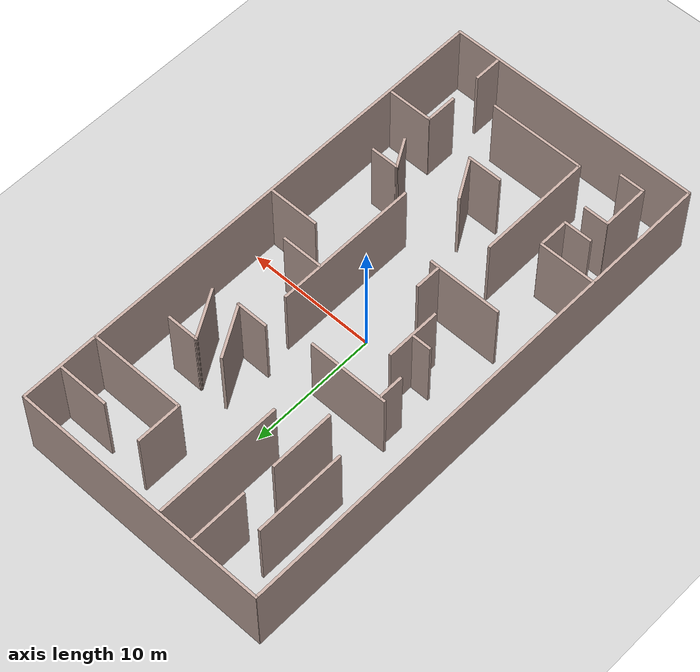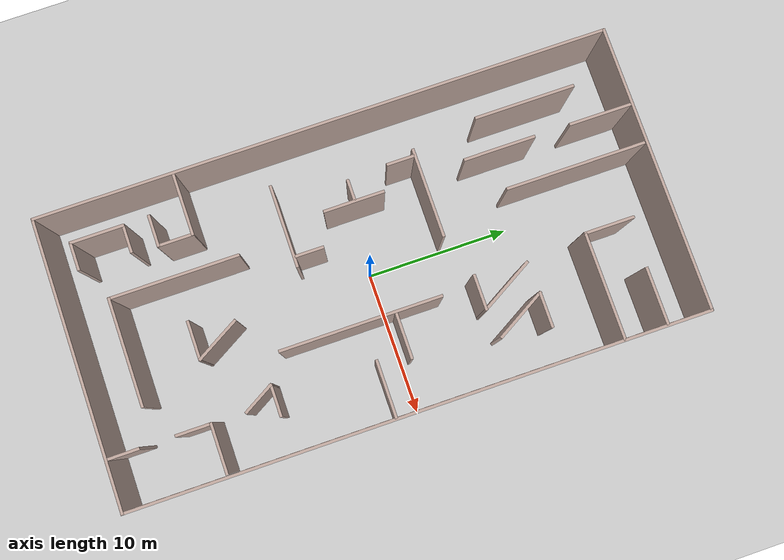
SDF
<sdf version="1.7">
 <world name="default">
  <plugin name="ros_interface_plugin" filename="librotors_gazebo_ros_interface_plugin.so"/>
  <light name="sun" type="directional">
   <pose>0 0 10 0 -0 0</pose>
   <diffuse>0.8 0.8 0.8 1</diffuse>
   <specular>0.2 0.2 0.2 1</specular>
   <attenuation>
    <range>1000</range>
    <constant>0.9</constant>
    <linear>0.01</linear>
    <quadratic>0.001</quadratic>
   </attenuation>
   <direction>-0.5 0.1 -0.9</direction>
   <spot><inner_angle>0</inner_angle><outer_angle>0</outer_angle><falloff>0</falloff></spot>
  </light>
  <model name="ground_plane">
   <static>1</static>
   <link name="link">
    <collision name="collision">
     <geometry><plane><normal>0 0 1</normal><size>100 100</size></plane></geometry>
     <surface><friction><ode><mu>100</mu><mu2>50</mu2></ode></friction></surface>
    </collision>
    <visual name="visual">
     <cast_shadows>0</cast_shadows>
     <geometry><plane><normal>0 0 1</normal><size>100 100</size></plane></geometry>
     <material>
      <script><uri>file://media/materials/scripts/gazebo.material</uri><name>Gazebo/Grey</name></script>
     </material>
    </visual>
   </link>
  </model>
  <gravity>0 0 -9.8</gravity>
  <magnetic_field>6e-06 2.3e-05 -4.2e-05</magnetic_field>
  <atmosphere type="adiabatic"/>
  <physics type="ode">
   <max_step_size>0.005</max_step_size>
   <real_time_factor>1</real_time_factor>
   <real_time_update_rate>200</real_time_update_rate>
  </physics>
  <scene><ambient>0.4 0.4 0.4 1</ambient><background>0.7 0.7 0.7 1</background><shadows>1</shadows></scene>
  <spherical_coordinates>
   <surface_model>EARTH_WGS84</surface_model>
   <latitude_deg>0</latitude_deg>
   <longitude_deg>0</longitude_deg>
   <elevation>0</elevation>
   <heading_deg>0</heading_deg>
  </spherical_coordinates>
  <model name="Untitled">
   <pose>-0.002612 0 0 0 -0 0</pose>
   <link name="Wall_0">
    <collision name="Wall_0_Collision">
     <geometry><box><size>20.15 0.2 6.0</size></box></geometry>
     <pose>0 0 3.0 0 -0 0</pose>
    </collision>
    <visual name="Wall_0_Visual">
     <pose>0 0 3.0 0 -0 0</pose>
     <geometry><box><size>20.15 0.2 6.0</size></box></geometry>
     <material>
      <script><uri>file://media/materials/scripts/gazebo.material</uri><name>Gazebo/Grey</name></script>
      <ambient>0.760784 0.662745 0.627451 1</ambient>
     </material>
     <meta><layer>0</layer></meta>
    </visual>
    <pose>0.002612 20 0 0 -0 0</pose>
   </link>
   <link name="Wall_11">
    <collision name="Wall_11_Collision">
     <geometry><box><size>2.25 0.2 6.0</size></box></geometry>
     <pose>0 0 3.0 0 -0 0</pose>
    </collision>
    <visual name="Wall_11_Visual">
     <pose>0 0 3.0 0 -0 0</pose>
     <geometry><box><size>2.25 0.2 6.0</size></box></geometry>
     <material>
      <script><uri>file://media/materials/scripts/gazebo.material</uri><name>Gazebo/Grey</name></script>
      <ambient>0.760784 0.662745 0.627451 1</ambient>
     </material>
     <meta><layer>0</layer></meta>
    </visual>
    <pose>6.45204 -18.8685 0 0 -0 1.5708</pose>
   </link>
   <link name="Wall_13">
    <collision name="Wall_13_Collision">
     <geometry><box><size>7.5 0.2 6.0</size></box></geometry>
     <pose>0 0 3.0 0 -0 0</pose>
    </collision>
    <visual name="Wall_13_Visual">
     <pose>0 0 3.0 0 -0 0</pose>
     <geometry><box><size>7.5 0.2 6.0</size></box></geometry>
     <material>
      <script><uri>file://media/materials/scripts/gazebo.material</uri><name>Gazebo/Grey</name></script>
      <ambient>0.760784 0.662745 0.627451 1</ambient>
     </material>
     <meta><layer>0</layer></meta>
    </visual>
    <pose>0.306648 -16.7926 0 0 -0 3.14159</pose>
   </link>
   <link name="Wall_14">
    <collision name="Wall_14_Collision">
     <geometry><box><size>9 0.2 6.0</size></box></geometry>
     <pose>0 0 3.0 0 -0 0</pose>
    </collision>
    <visual name="Wall_14_Visual">
     <pose>0 0 3.0 0 -0 0</pose>
     <geometry><box><size>9 0.2 6.0</size></box></geometry>
     <material>
      <script><uri>file://media/materials/scripts/gazebo.material</uri><name>Gazebo/Grey</name></script>
      <ambient>0.760784 0.662745 0.627451 1</ambient>
     </material>
     <meta><layer>0</layer></meta>
    </visual>
    <pose>-3.36835 -12.3676 0 0 -0 1.5708</pose>
   </link>
   <link name="Wall_17">
    <collision name="Wall_17_Collision">
     <geometry><box><size>5.75 0.2 6.0</size></box></geometry>
     <pose>0 0 3.0 0 -0 0</pose>
    </collision>
    <visual name="Wall_17_Visual">
     <pose>0 0 3.0 0 -0 0</pose>
     <geometry><box><size>5.75 0.2 6.0</size></box></geometry>
     <material>
      <script><uri>file://media/materials/scripts/gazebo.material</uri><name>Gazebo/Grey</name></script>
      <ambient>0.760784 0.662745 0.627451 1</ambient>
     </material>
     <meta><layer>0</layer></meta>
    </visual>
    <pose>-4.23251 -4.54093 0 0 -0 0</pose>
   </link>
   <link name="Wall_19">
    <collision name="Wall_19_Collision">
     <geometry><box><size>4.25 0.2 6.0</size></box></geometry>
     <pose>0 0 3.0 0 -0 0</pose>
    </collision>
    <visual name="Wall_19_Visual">
     <pose>0 0 3.0 0 -0 0</pose>
     <geometry><box><size>4.25 0.2 6.0</size></box></geometry>
     <material>
      <script><uri>file://media/materials/scripts/gazebo.material</uri><name>Gazebo/Grey</name></script>
      <ambient>0.760784 0.662745 0.627451 1</ambient>
     </material>
     <meta><layer>0</layer></meta>
    </visual>
    <pose>-4.30991 0.339328 0 0 -0 -1.5708</pose>
   </link>
   <link name="Wall_2">
    <collision name="Wall_2_Collision">
     <geometry><box><size>40.15 0.2 6.0</size></box></geometry>
     <pose>0 0 3.0 0 -0 0</pose>
    </collision>
    <visual name="Wall_2_Visual">
     <pose>0 0 3.0 0 -0 0</pose>
     <geometry><box><size>40.15 0.2 6.0</size></box></geometry>
     <material>
      <script><uri>file://media/materials/scripts/gazebo.material</uri><name>Gazebo/Grey</name></script>
      <ambient>0.760784 0.662745 0.627451 1</ambient>
     </material>
     <meta><layer>0</layer></meta>
    </visual>
    <pose>10.0026 0 0 0 -0 1.5708</pose>
   </link>
   <link name="Wall_21">
    <collision name="Wall_21_Collision">
     <geometry><box><size>1.5 0.2 6.0</size></box></geometry>
     <pose>0 0 3.0 0 -0 0</pose>
    </collision>
    <visual name="Wall_21_Visual">
     <pose>0 0 3.0 0 -0 0</pose>
     <geometry><box><size>1.5 0.2 6.0</size></box></geometry>
     <material>
      <script><uri>file://media/materials/scripts/gazebo.material</uri><name>Gazebo/Grey</name></script>
      <ambient>0.760784 0.662745 0.627451 1</ambient>
     </material>
     <meta><layer>0</layer></meta>
    </visual>
    <pose>-5.10866 0.409256 0 0 -0 3.14159</pose>
   </link>
   <link name="Wall_23">
    <collision name="Wall_23_Collision">
     <geometry><box><size>2 0.2 6.0</size></box></geometry>
     <pose>0 0 3.0 0 -0 0</pose>
    </collision>
    <visual name="Wall_23_Visual">
     <pose>0 0 3.0 0 -0 0</pose>
     <geometry><box><size>2 0.2 6.0</size></box></geometry>
     <material>
      <script><uri>file://media/materials/scripts/gazebo.material</uri><name>Gazebo/Grey</name></script>
      <ambient>0.760784 0.662745 0.627451 1</ambient>
     </material>
     <meta><layer>0</layer></meta>
    </visual>
    <pose>-2.08232 -3.49217 0 0 -0 1.5708</pose>
   </link>
   <link name="Wall_25">
    <collision name="Wall_25_Collision">
     <geometry><box><size>3.5 0.2 6.0</size></box></geometry>
     <pose>0 0 3.0 0 -0 0</pose>
    </collision>
    <visual name="Wall_25_Visual">
     <pose>0 0 3.0 0 -0 0</pose>
     <geometry><box><size>3.5 0.2 6.0</size></box></geometry>
     <material>
      <script><uri>file://media/materials/scripts/gazebo.material</uri><name>Gazebo/Grey</name></script>
      <ambient>0.760784 0.662745 0.627451 1</ambient>
     </material>
     <meta><layer>0</layer></meta>
    </visual>
    <pose>1.47778 -10.9417 0 0 -0 -1.0472</pose>
   </link>
   <link name="Wall_26">
    <collision name="Wall_26_Collision">
     <geometry><box><size>2.75 0.2 6.0</size></box></geometry>
     <pose>0 0 3.0 0 -0 0</pose>
    </collision>
    <visual name="Wall_26_Visual">
     <pose>0 0 3.0 0 -0 0</pose>
     <geometry><box><size>2.75 0.2 6.0</size></box></geometry>
     <material>
      <script><uri>file://media/materials/scripts/gazebo.material</uri><name>Gazebo/Grey</name></script>
      <ambient>0.760784 0.662745 0.627451 1</ambient>
     </material>
     <meta><layer>0</layer></meta>
    </visual>
    <pose>1.01528 -12.3923 0 0 -0 3.14159</pose>
   </link>
   <link name="Wall_28">
    <collision name="Wall_28_Collision">
     <geometry><box><size>4.5 0.2 6.0</size></box></geometry>
     <pose>0 0 3.0 0 -0 0</pose>
    </collision>
    <visual name="Wall_28_Visual">
     <pose>0 0 3.0 0 -0 0</pose>
     <geometry><box><size>4.5 0.2 6.0</size></box></geometry>
     <material>
      <script><uri>file://media/materials/scripts/gazebo.material</uri><name>Gazebo/Grey</name></script>
      <ambient>0.760784 0.662745 0.627451 1</ambient>
     </material>
     <meta><layer>0</layer></meta>
    </visual>
    <pose>-7.82761 -10.3574 0 0 -0 0</pose>
   </link>
   <link name="Wall_29">
    <collision name="Wall_29_Collision">
     <geometry><box><size>2.5 0.2 6.0</size></box></geometry>
     <pose>0 0 3.0 0 -0 0</pose>
    </collision>
    <visual name="Wall_29_Visual">
     <pose>0 0 3.0 0 -0 0</pose>
     <geometry><box><size>2.5 0.2 6.0</size></box></geometry>
     <material>
      <script><uri>file://media/materials/scripts/gazebo.material</uri><name>Gazebo/Grey</name></script>
      <ambient>0.760784 0.662745 0.627451 1</ambient>
     </material>
     <meta><layer>0</layer></meta>
    </visual>
    <pose>-5.65261 -11.5324 0 0 -0 -1.5708</pose>
   </link>
   <link name="Wall_30">
    <collision name="Wall_30_Collision">
     <geometry><box><size>2.25 0.2 6.0</size></box></geometry>
     <pose>0 0 3.0 0 -0 0</pose>
    </collision>
    <visual name="Wall_30_Visual">
     <pose>0 0 3.0 0 -0 0</pose>
     <geometry><box><size>2.25 0.2 6.0</size></box></geometry>
     <material>
      <script><uri>file://media/materials/scripts/gazebo.material</uri><name>Gazebo/Grey</name></script>
      <ambient>0.760784 0.662745 0.627451 1</ambient>
     </material>
     <meta><layer>0</layer></meta>
    </visual>
    <pose>-6.70261 -12.7074 0 0 -0 3.14159</pose>
   </link>
   <link name="Wall_34">
    <collision name="Wall_34_Collision">
     <geometry><box><size>3.75 0.2 6.0</size></box></geometry>
     <pose>0 0 3.0 0 -0 0</pose>
    </collision>
    <visual name="Wall_34_Visual">
     <pose>0 0 3.0 0 -0 0</pose>
     <geometry><box><size>3.75 0.2 6.0</size></box></geometry>
     <material>
      <script><uri>file://media/materials/scripts/gazebo.material</uri><name>Gazebo/Grey</name></script>
      <ambient>0.760784 0.662745 0.627451 1</ambient>
     </material>
     <meta><layer>0</layer></meta>
    </visual>
    <pose>-7.69298 -16.2917 0 0 -0 -1.5708</pose>
   </link>
   <link name="Wall_35">
    <collision name="Wall_35_Collision">
     <geometry><box><size>2 0.2 6.0</size></box></geometry>
     <pose>0 0 3.0 0 -0 0</pose>
    </collision>
    <visual name="Wall_35_Visual">
     <pose>0 0 3.0 0 -0 0</pose>
     <geometry><box><size>2 0.2 6.0</size></box></geometry>
     <material>
      <script><uri>file://media/materials/scripts/gazebo.material</uri><name>Gazebo/Grey</name></script>
      <ambient>0.760784 0.662745 0.627451 1</ambient>
     </material>
     <meta><layer>0</layer></meta>
    </visual>
    <pose>-6.76797 -18.0917 0 0 -0 0</pose>
   </link>
   <link name="Wall_38">
    <collision name="Wall_38_Collision">
     <geometry><box><size>2 0.2 6.0</size></box></geometry>
     <pose>0 0 3.0 0 -0 0</pose>
    </collision>
    <visual name="Wall_38_Visual">
     <pose>0 0 3.0 0 -0 0</pose>
     <geometry><box><size>2 0.2 6.0</size></box></geometry>
     <material>
      <script><uri>file://media/materials/scripts/gazebo.material</uri><name>Gazebo/Grey</name></script>
      <ambient>0.760784 0.662745 0.627451 1</ambient>
     </material>
     <meta><layer>0</layer></meta>
    </visual>
    <pose>-6.76797 -14.4917 0 0 -0 0</pose>
   </link>
   <link name="Wall_4">
    <collision name="Wall_4_Collision">
     <geometry><box><size>40.15 0.2 6.0</size></box></geometry>
     <pose>0 0 3.0 0 -0 0</pose>
    </collision>
    <visual name="Wall_4_Visual">
     <pose>0 0 3.0 0 -0 0</pose>
     <geometry><box><size>40.15 0.2 6.0</size></box></geometry>
     <material>
      <script><uri>file://media/materials/scripts/gazebo.material</uri><name>Gazebo/Grey</name></script>
      <ambient>0.760784 0.662745 0.627451 1</ambient>
     </material>
     <meta><layer>0</layer></meta>
    </visual>
    <pose>-9.99739 0 0 0 -0 -1.5708</pose>
   </link>
   <link name="Wall_41">
    <collision name="Wall_41_Collision">
     <geometry><box><size>11.25 0.2 6.0</size></box></geometry>
     <pose>0 0 3.0 0 -0 0</pose>
    </collision>
    <visual name="Wall_41_Visual">
     <pose>0 0 3.0 0 -0 0</pose>
     <geometry><box><size>11.25 0.2 6.0</size></box></geometry>
     <material>
      <script><uri>file://media/materials/scripts/gazebo.material</uri><name>Gazebo/Grey</name></script>
      <ambient>0.760784 0.662745 0.627451 1</ambient>
     </material>
     <meta><layer>0</layer></meta>
    </visual>
    <pose>3.4548 -1.81469 0 0 -0 -1.5708</pose>
   </link>
   <link name="Wall_43">
    <collision name="Wall_43_Collision">
     <geometry><box><size>3.25 0.2 6.0</size></box></geometry>
     <pose>0 0 3.0 0 -0 0</pose>
    </collision>
    <visual name="Wall_43_Visual">
     <pose>0 0 3.0 0 -0 0</pose>
     <geometry><box><size>3.25 0.2 6.0</size></box></geometry>
     <material>
      <script><uri>file://media/materials/scripts/gazebo.material</uri><name>Gazebo/Grey</name></script>
      <ambient>0.760784 0.662745 0.627451 1</ambient>
     </material>
     <meta><layer>0</layer></meta>
    </visual>
    <pose>5.08617 0.561855 0 0 -0 0</pose>
   </link>
   <link name="Wall_45">
    <collision name="Wall_45_Collision">
     <geometry><box><size>4 0.2 6.0</size></box></geometry>
     <pose>0 0 3.0 0 -0 0</pose>
    </collision>
    <visual name="Wall_45_Visual">
     <pose>0 0 3.0 0 -0 0</pose>
     <geometry><box><size>4 0.2 6.0</size></box></geometry>
     <material>
      <script><uri>file://media/materials/scripts/gazebo.material</uri><name>Gazebo/Grey</name></script>
      <ambient>0.760784 0.662745 0.627451 1</ambient>
     </material>
     <meta><layer>0</layer></meta>
    </visual>
    <pose>7.98366 -1.63515 0 0 -0 0</pose>
   </link>
   <link name="Wall_47">
    <collision name="Wall_47_Collision">
     <geometry><box><size>4 0.2 6.0</size></box></geometry>
     <pose>0 0 3.0 0 -0 0</pose>
    </collision>
    <visual name="Wall_47_Visual">
     <pose>0 0 3.0 0 -0 0</pose>
     <geometry><box><size>4 0.2 6.0</size></box></geometry>
     <material>
      <script><uri>file://media/materials/scripts/gazebo.material</uri><name>Gazebo/Grey</name></script>
      <ambient>0.760784 0.662745 0.627451 1</ambient>
     </material>
     <meta><layer>0</layer></meta>
    </visual>
    <pose>6.28486 8.17045 0 0 -0 2.0944</pose>
   </link>
   <link name="Wall_48">
    <collision name="Wall_48_Collision">
     <geometry><box><size>2.5 0.2 6.0</size></box></geometry>
     <pose>0 0 3.0 0 -0 0</pose>
    </collision>
    <visual name="Wall_48_Visual">
     <pose>0 0 3.0 0 -0 0</pose>
     <geometry><box><size>2.5 0.2 6.0</size></box></geometry>
     <material>
      <script><uri>file://media/materials/scripts/gazebo.material</uri><name>Gazebo/Grey</name></script>
      <ambient>0.760784 0.662745 0.627451 1</ambient>
     </material>
     <meta><layer>0</layer></meta>
    </visual>
    <pose>6.49737 9.83755 0 0 -0 0</pose>
   </link>
   <link name="Wall_50">
    <collision name="Wall_50_Collision">
     <geometry><box><size>2.5 0.2 6.0</size></box></geometry>
     <pose>0 0 3.0 0 -0 0</pose>
    </collision>
    <visual name="Wall_50_Visual">
     <pose>0 0 3.0 0 -0 0</pose>
     <geometry><box><size>2.5 0.2 6.0</size></box></geometry>
     <material>
      <script><uri>file://media/materials/scripts/gazebo.material</uri><name>Gazebo/Grey</name></script>
      <ambient>0.760784 0.662745 0.627451 1</ambient>
     </material>
     <meta><layer>0</layer></meta>
    </visual>
    <pose>4.04843 6.17643 0 0 -0 0</pose>
   </link>
   <link name="Wall_51">
    <collision name="Wall_51_Collision">
     <geometry><box><size>4.25 0.2 6.0</size></box></geometry>
     <pose>0 0 3.0 0 -0 0</pose>
    </collision>
    <visual name="Wall_51_Visual">
     <pose>0 0 3.0 0 -0 0</pose>
     <geometry><box><size>4.25 0.2 6.0</size></box></geometry>
     <material>
      <script><uri>file://media/materials/scripts/gazebo.material</uri><name>Gazebo/Grey</name></script>
      <ambient>0.760784 0.662745 0.627451 1</ambient>
     </material>
     <meta><layer>0</layer></meta>
    </visual>
    <pose>4.19843 7.95178 0 0 -0 2.0944</pose>
   </link>
   <link name="Wall_53">
    <collision name="Wall_53_Collision">
     <geometry><box><size>6.25 0.2 6.0</size></box></geometry>
     <pose>0 0 3.0 0 -0 0</pose>
    </collision>
    <visual name="Wall_53_Visual">
     <pose>0 0 3.0 0 -0 0</pose>
     <geometry><box><size>6.25 0.2 6.0</size></box></geometry>
     <material>
      <script><uri>file://media/materials/scripts/gazebo.material</uri><name>Gazebo/Grey</name></script>
      <ambient>0.760784 0.662745 0.627451 1</ambient>
     </material>
     <meta><layer>0</layer></meta>
    </visual>
    <pose>-3.29401 5.15561 0 0 -0 0</pose>
   </link>
   <link name="Wall_55">
    <collision name="Wall_55_Collision">
     <geometry><box><size>2 0.2 6.0</size></box></geometry>
     <pose>0 0 3.0 0 -0 0</pose>
    </collision>
    <visual name="Wall_55_Visual">
     <pose>0 0 3.0 0 -0 0</pose>
     <geometry><box><size>2 0.2 6.0</size></box></geometry>
     <material>
      <script><uri>file://media/materials/scripts/gazebo.material</uri><name>Gazebo/Grey</name></script>
      <ambient>0.760784 0.662745 0.627451 1</ambient>
     </material>
     <meta><layer>0</layer></meta>
    </visual>
    <pose>-5.9363 4.1624 0 0 -0 -1.5708</pose>
   </link>
   <link name="Wall_57">
    <collision name="Wall_57_Collision">
     <geometry><box><size>9.75 0.2 6.0</size></box></geometry>
     <pose>0 0 3.0 0 -0 0</pose>
    </collision>
    <visual name="Wall_57_Visual">
     <pose>0 0 3.0 0 -0 0</pose>
     <geometry><box><size>9.75 0.2 6.0</size></box></geometry>
     <material>
      <script><uri>file://media/materials/scripts/gazebo.material</uri><name>Gazebo/Grey</name></script>
      <ambient>0.760784 0.662745 0.627451 1</ambient>
     </material>
     <meta><layer>0</layer></meta>
    </visual>
    <pose>-1.84527 14.9944 0 0 -0 -1.5708</pose>
   </link>
   <link name="Wall_59">
    <collision name="Wall_59_Collision">
     <geometry><box><size>7 0.2 6.0</size></box></geometry>
     <pose>0 0 3.0 0 -0 0</pose>
    </collision>
    <visual name="Wall_59_Visual">
     <pose>0 0 3.0 0 -0 0</pose>
     <geometry><box><size>7 0.2 6.0</size></box></geometry>
     <material>
      <script><uri>file://media/materials/scripts/gazebo.material</uri><name>Gazebo/Grey</name></script>
      <ambient>0.760784 0.662745 0.627451 1</ambient>
     </material>
     <meta><layer>0</layer></meta>
    </visual>
    <pose>-7.02795 13.265 0 0 -0 -1.5708</pose>
   </link>
   <link name="Wall_6">
    <collision name="Wall_6_Collision">
     <geometry><box><size>20.15 0.2 6.0</size></box></geometry>
     <pose>0 0 3.0 0 -0 0</pose>
    </collision>
    <visual name="Wall_6_Visual">
     <pose>0 0 3.0 0 -0 0</pose>
     <geometry><box><size>20.15 0.2 6.0</size></box></geometry>
     <material>
      <script><uri>file://media/materials/scripts/gazebo.material</uri><name>Gazebo/Grey</name></script>
      <ambient>0.760784 0.662745 0.627451 1</ambient>
     </material>
     <meta><layer>0</layer></meta>
    </visual>
    <pose>0.002612 -20 0 0 -0 3.14159</pose>
   </link>
   <link name="Wall_61">
    <collision name="Wall_61_Collision">
     <geometry><box><size>4.5 0.2 6.0</size></box></geometry>
     <pose>0 0 3.0 0 -0 0</pose>
    </collision>
    <visual name="Wall_61_Visual">
     <pose>0 0 3.0 0 -0 0</pose>
     <geometry><box><size>4.5 0.2 6.0</size></box></geometry>
     <material>
      <script><uri>file://media/materials/scripts/gazebo.material</uri><name>Gazebo/Grey</name></script>
      <ambient>0.760784 0.662745 0.627451 1</ambient>
     </material>
     <meta><layer>0</layer></meta>
    </visual>
    <pose>-4.59497 17.7901 0 0 -0 -1.5708</pose>
   </link>
   <link name="Wall_63">
    <collision name="Wall_63_Collision">
     <geometry><box><size>5 0.2 6.0</size></box></geometry>
     <pose>0 0 3.0 0 -0 0</pose>
    </collision>
    <visual name="Wall_63_Visual">
     <pose>0 0 3.0 0 -0 0</pose>
     <geometry><box><size>5 0.2 6.0</size></box></geometry>
     <material>
      <script><uri>file://media/materials/scripts/gazebo.material</uri><name>Gazebo/Grey</name></script>
      <ambient>0.760784 0.662745 0.627451 1</ambient>
     </material>
     <meta><layer>0</layer></meta>
    </visual>
    <pose>-4.59497 10.6155 0 0 -0 -1.5708</pose>
   </link>
   <link name="Wall_65">
    <collision name="Wall_65_Collision">
     <geometry><box><size>3.5 0.2 6.0</size></box></geometry>
     <pose>0 0 3.0 0 -0 0</pose>
    </collision>
    <visual name="Wall_65_Visual">
     <pose>0 0 3.0 0 -0 0</pose>
     <geometry><box><size>3.5 0.2 6.0</size></box></geometry>
     <material>
      <script><uri>file://media/materials/scripts/gazebo.material</uri><name>Gazebo/Grey</name></script>
      <ambient>0.760784 0.662745 0.627451 1</ambient>
     </material>
     <meta><layer>0</layer></meta>
    </visual>
    <pose>2.6104 15.67 0 0 -0 -1.5708</pose>
   </link>
   <link name="Wall_66">
    <collision name="Wall_66_Collision">
     <geometry><box><size>7.5 0.2 6.0</size></box></geometry>
     <pose>0 0 3.0 0 -0 0</pose>
    </collision>
    <visual name="Wall_66_Visual">
     <pose>0 0 3.0 0 -0 0</pose>
     <geometry><box><size>7.5 0.2 6.0</size></box></geometry>
     <material>
      <script><uri>file://media/materials/scripts/gazebo.material</uri><name>Gazebo/Grey</name></script>
      <ambient>0.760784 0.662745 0.627451 1</ambient>
     </material>
     <meta><layer>0</layer></meta>
    </visual>
    <pose>6.2854 13.995 0 0 -0 0</pose>
   </link>
   <link name="Wall_68">
    <collision name="Wall_68_Collision">
     <geometry><box><size>4 0.2 6.0</size></box></geometry>
     <pose>0 0 3.0 0 -0 0</pose>
    </collision>
    <visual name="Wall_68_Visual">
     <pose>0 0 3.0 0 -0 0</pose>
     <geometry><box><size>4 0.2 6.0</size></box></geometry>
     <material>
      <script><uri>file://media/materials/scripts/gazebo.material</uri><name>Gazebo/Grey</name></script>
      <ambient>0.760784 0.662745 0.627451 1</ambient>
     </material>
     <meta><layer>0</layer></meta>
    </visual>
    <pose>7.98434 16.9707 0 0 -0 3.14159</pose>
   </link>
   <link name="Wall_70">
    <collision name="Wall_70_Collision">
     <geometry><box><size>2.5 0.2 6.0</size></box></geometry>
     <pose>0 0 3.0 0 -0 0</pose>
    </collision>
    <visual name="Wall_70_Visual">
     <pose>0 0 3.0 0 -0 0</pose>
     <geometry><box><size>2.5 0.2 6.0</size></box></geometry>
     <material>
      <script><uri>file://media/materials/scripts/gazebo.material</uri><name>Gazebo/Grey</name></script>
      <ambient>0.760784 0.662745 0.627451 1</ambient>
     </material>
     <meta><layer>0</layer></meta>
    </visual>
    <pose>5.91161 -9.59319 0 0 -0 -1.0472</pose>
   </link>
   <link name="Wall_72">
    <collision name="Wall_72_Collision">
     <geometry><box><size>2.25 0.2 6.0</size></box></geometry>
     <pose>0 0 3.0 0 -0 0</pose>
    </collision>
    <visual name="Wall_72_Visual">
     <pose>0 0 3.0 0 -0 0</pose>
     <geometry><box><size>2.25 0.2 6.0</size></box></geometry>
     <material>
      <script><uri>file://media/materials/scripts/gazebo.material</uri><name>Gazebo/Grey</name></script>
      <ambient>0.760784 0.662745 0.627451 1</ambient>
     </material>
     <meta><layer>0</layer></meta>
    </visual>
    <pose>6.37411 -8.5756 0 0 -0 0</pose>
   </link>
   <link name="Wall_8">
    <collision name="Wall_8_Collision">
     <geometry><box><size>3.5 0.2 6.0</size></box></geometry>
     <pose>0 0 3.0 0 -0 0</pose>
    </collision>
    <visual name="Wall_8_Visual">
     <pose>0 0 3.0 0 -0 0</pose>
     <geometry><box><size>3.5 0.2 6.0</size></box></geometry>
     <material>
      <script><uri>file://media/materials/scripts/gazebo.material</uri><name>Gazebo/Grey</name></script>
      <ambient>0.760784 0.662745 0.627451 1</ambient>
     </material>
     <meta><layer>0</layer></meta>
    </visual>
    <pose>8.11482 -12.9605 0 0 -0 3.14159</pose>
   </link>
   <link name="Wall_9">
    <collision name="Wall_9_Collision">
     <geometry><box><size>2.50061 0.2 6.0</size></box></geometry>
     <pose>0 0 3.0 0 -0 0</pose>
    </collision>
    <visual name="Wall_9_Visual">
     <pose>0 0 3.0 0 -0 0</pose>
     <geometry><box><size>2.50061 0.2 6.0</size></box></geometry>
     <material>
      <script><uri>file://media/materials/scripts/gazebo.material</uri><name>Gazebo/Grey</name></script>
      <ambient>0.760784 0.662745 0.627451 1</ambient>
     </material>
     <meta><layer>0</layer></meta>
    </visual>
    <pose>6.43982 -14.1355 0 0 -0 -1.5708</pose>
   </link>
   <static>1</static>
  </model>
 </world>
</sdf>
